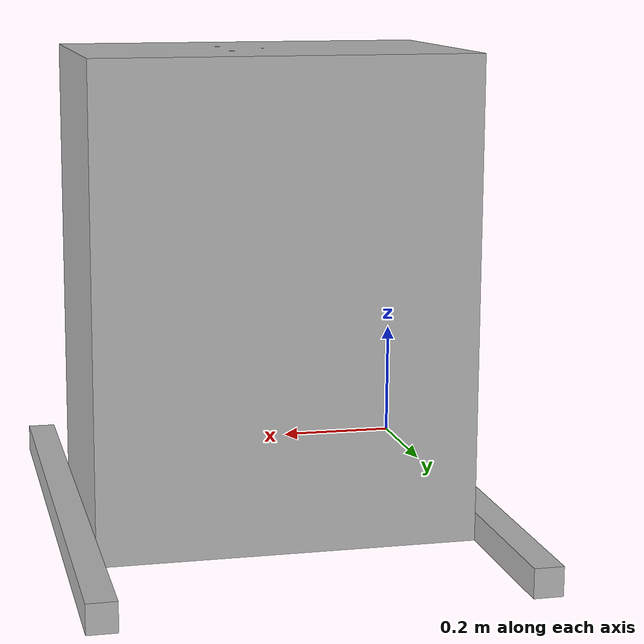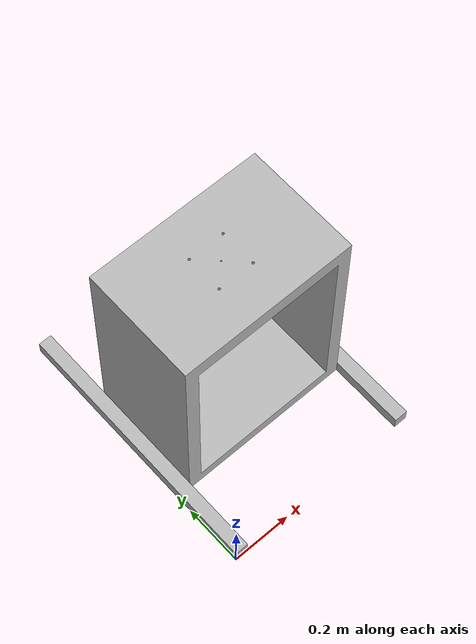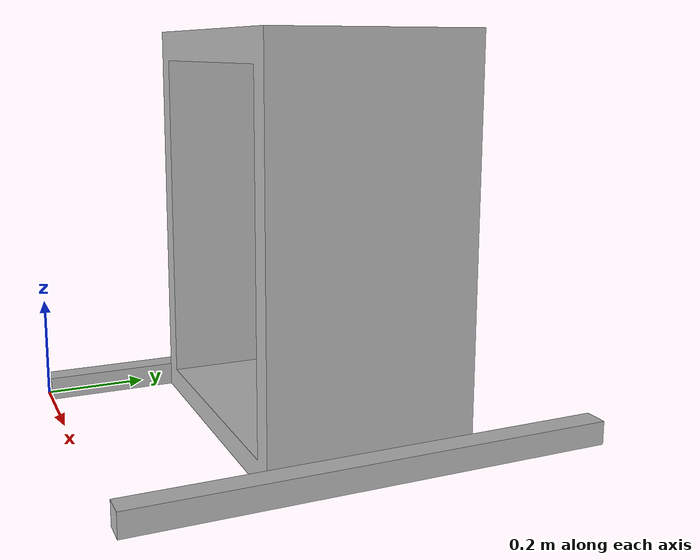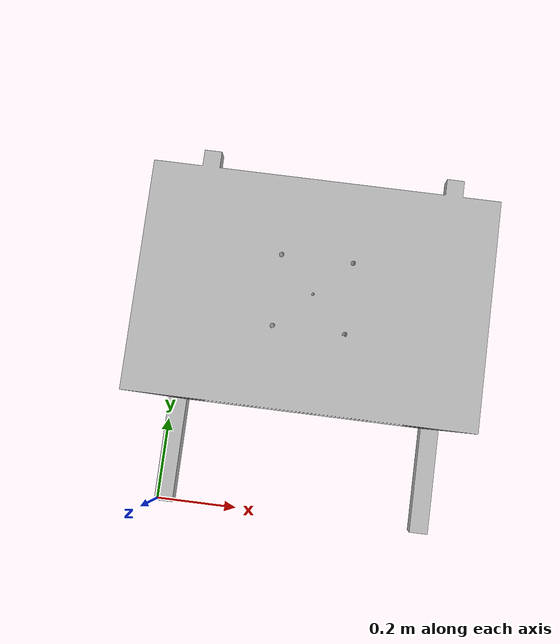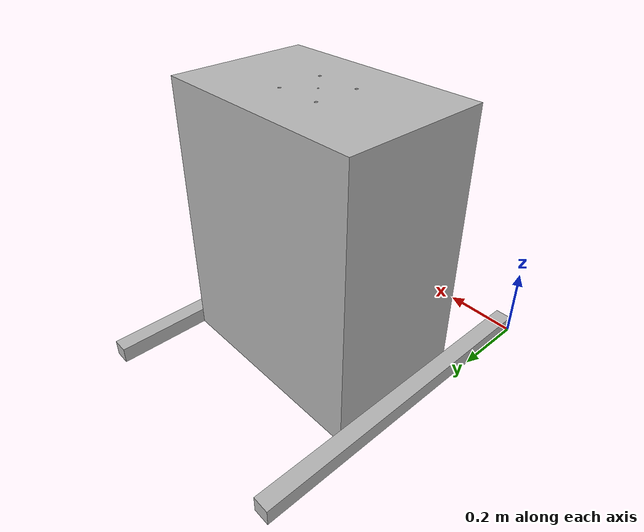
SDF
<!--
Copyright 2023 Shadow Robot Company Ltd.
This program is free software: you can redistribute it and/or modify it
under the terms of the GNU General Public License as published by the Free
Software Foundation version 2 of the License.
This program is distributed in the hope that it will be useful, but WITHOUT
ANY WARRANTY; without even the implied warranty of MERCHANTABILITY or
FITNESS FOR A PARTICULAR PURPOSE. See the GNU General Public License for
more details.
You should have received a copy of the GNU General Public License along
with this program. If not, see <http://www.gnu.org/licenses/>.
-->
<?xml version="1.0" ?>

<sdf version="1.4">
  <model name="stand_small">
    <static>true</static>
    <link name="link">
      <inertial>
        <mass>20</mass>
      </inertial>
      <collision name="collision">
        <pose>0.0 0.0 0.0 0.0 0.0 0.0</pose>
        <geometry>
          <mesh>
            <uri>model://stand_small/meshes/stand_small.STL</uri>
          </mesh>
        </geometry>
      </collision>
      <visual name="visual">
        <pose>0.0 0.0 0.0 0.0 0.0 0.0</pose>
        <geometry>
          <mesh>
            <uri>model://stand_small/meshes/stand_small.STL</uri>
          </mesh>
        </geometry>
      </visual>
    </link>
  </model>
</sdf>
